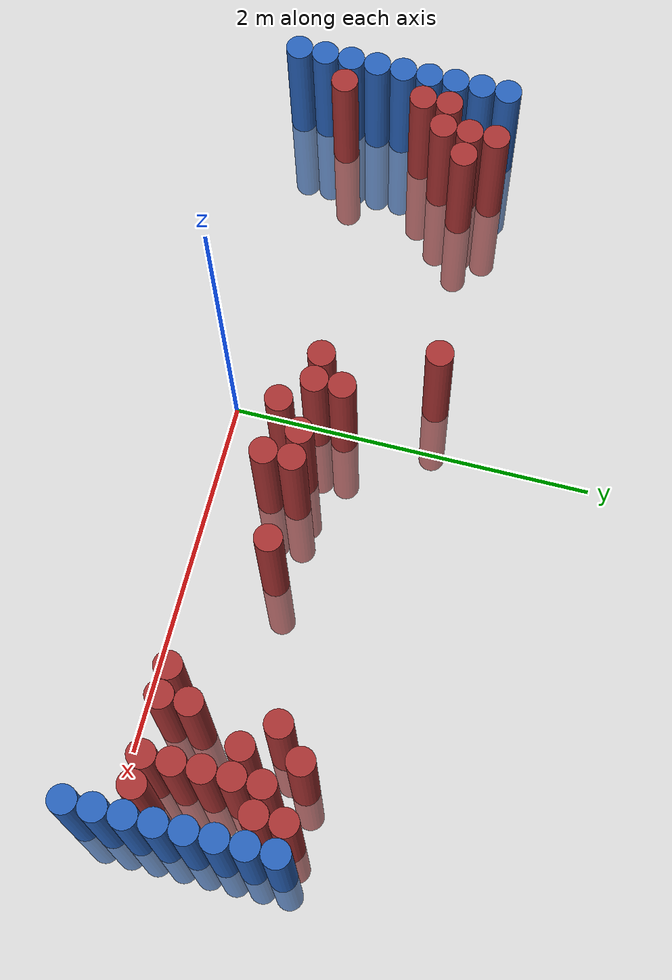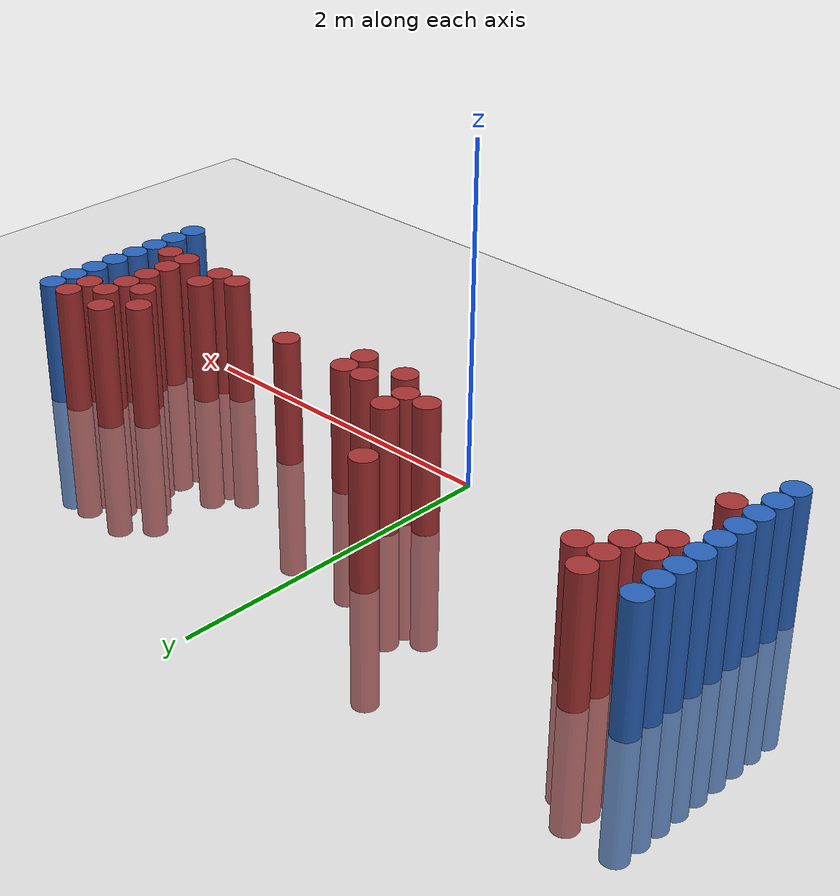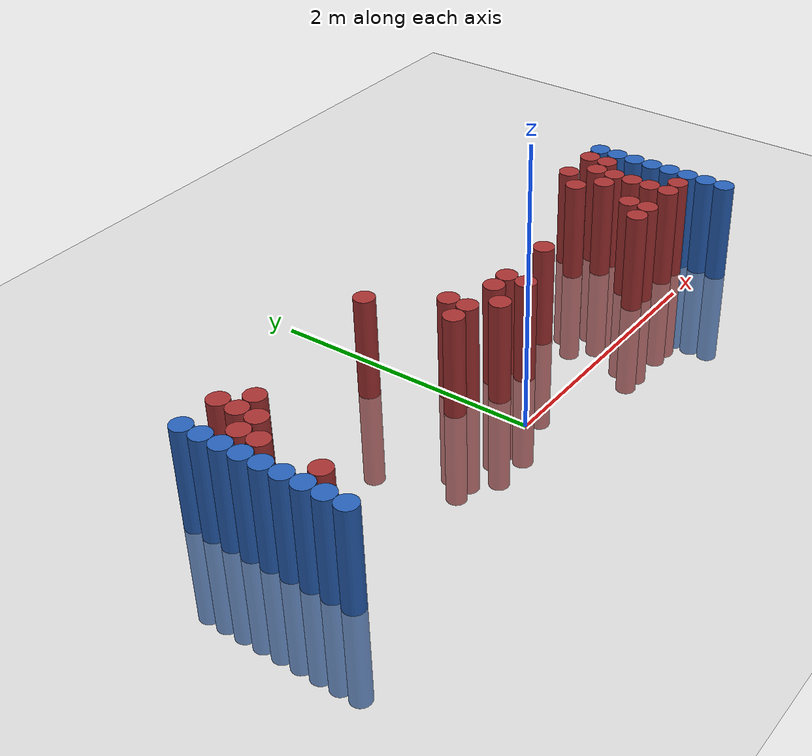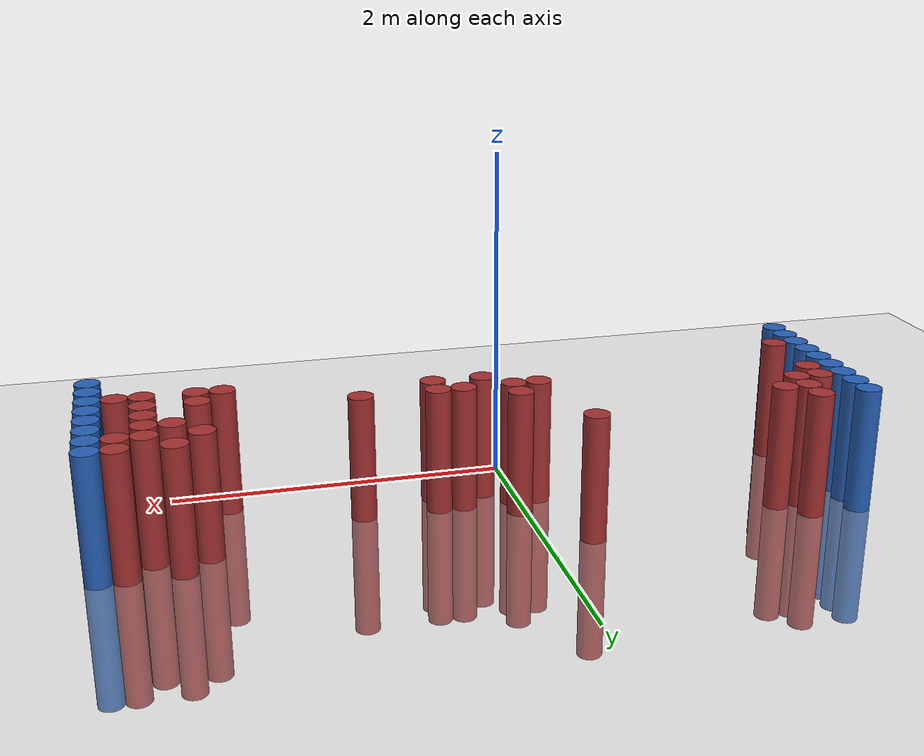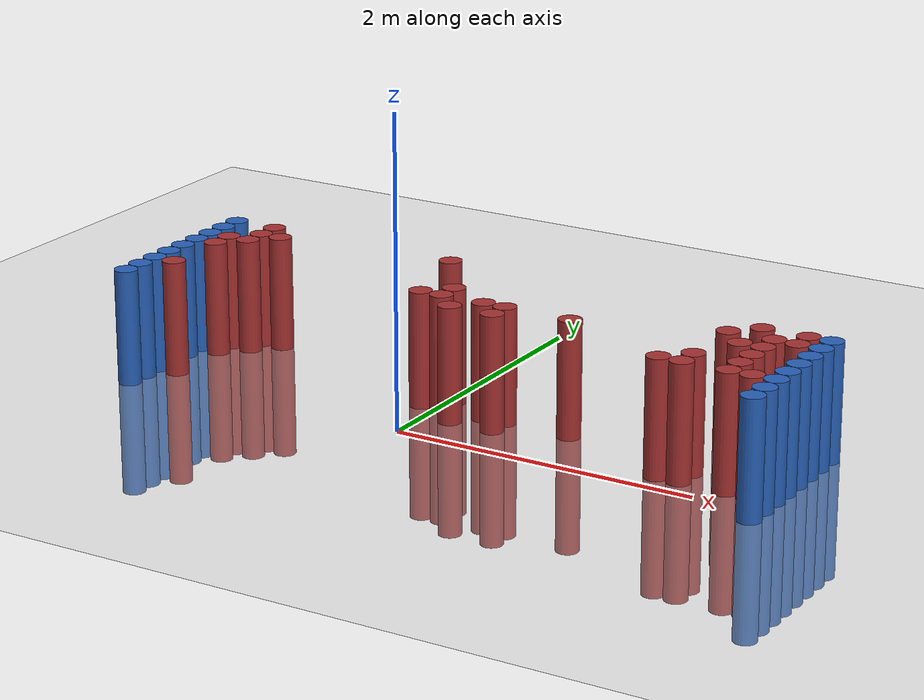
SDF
<sdf version="1.6">
 <world name="default">
  <model name="ground_plane">
   <static>1</static>
   <link name="link">
    <collision name="collision">
     <geometry><plane><normal>0 0 1</normal><size>100 100</size></plane></geometry>
     <surface><friction><ode><mu>100</mu><mu2>50</mu2></ode></friction></surface>
    </collision>
    <visual name="visual">
     <cast_shadows>0</cast_shadows>
     <geometry><plane><normal>0 0 1</normal><size>100 100</size></plane></geometry>
     <material>
      <script><uri>file://media/materials/scripts/gazebo.material</uri><name>Gazebo/Grey</name></script>
     </material>
    </visual>
   </link>
  </model>
  <model name="unit_cylinder_92">
   <static>1</static>
   <pose>2.425000 -0.125000 0.000000 0.000000 0.000000 0.000000</pose>
   <link name="link">
    <inertial>
     <mass>1</mass>
     <inertia><ixx>0.145833</ixx><ixy>0</ixy><ixz>0</ixz><iyy>0.145833</iyy><iyz>0</iyz><izz>0.125</izz></inertia>
    </inertial>
    <collision name="collision">
     <geometry><cylinder><radius>0.075000</radius><length>1.5</length></cylinder></geometry>
    </collision>
    <visual name="visual">
     <geometry><cylinder><radius>0.075000</radius><length>1.5</length></cylinder></geometry>
     <material>
      <ambient>0.152000 0.379000 0.720000 1</ambient>
      <diffuse>0.152000 0.379000 0.720000 1</diffuse>
     </material>
     <material>
      <script><name>Gazebo/Grey</name><uri>file://media/materials/scripts/gazebo.material</uri></script>
     </material>
    </visual>
   </link>
  </model>
  <model name="unit_cylinder_93">
   <static>1</static>
   <pose>-1.925000 -0.125000 0.000000 0.000000 0.000000 0.000000</pose>
   <link name="link">
    <inertial>
     <mass>1</mass>
     <inertia><ixx>0.145833</ixx><ixy>0</ixy><ixz>0</ixz><iyy>0.145833</iyy><iyz>0</iyz><izz>0.125</izz></inertia>
    </inertial>
    <collision name="collision">
     <geometry><cylinder><radius>0.075000</radius><length>1.5</length></cylinder></geometry>
    </collision>
    <visual name="visual">
     <geometry><cylinder><radius>0.075000</radius><length>1.5</length></cylinder></geometry>
     <material>
      <ambient>0.152000 0.379000 0.720000 1</ambient>
      <diffuse>0.152000 0.379000 0.720000 1</diffuse>
     </material>
     <material>
      <script><name>Gazebo/Grey</name><uri>file://media/materials/scripts/gazebo.material</uri></script>
     </material>
    </visual>
   </link>
  </model>
  <model name="unit_cylinder_94">
   <static>1</static>
   <pose>2.425000 0.025000 0.000000 0.000000 0.000000 0.000000</pose>
   <link name="link">
    <inertial>
     <mass>1</mass>
     <inertia><ixx>0.145833</ixx><ixy>0</ixy><ixz>0</ixz><iyy>0.145833</iyy><iyz>0</iyz><izz>0.125</izz></inertia>
    </inertial>
    <collision name="collision">
     <geometry><cylinder><radius>0.075000</radius><length>1.5</length></cylinder></geometry>
    </collision>
    <visual name="visual">
     <geometry><cylinder><radius>0.075000</radius><length>1.5</length></cylinder></geometry>
     <material>
      <ambient>0.152000 0.379000 0.720000 1</ambient>
      <diffuse>0.152000 0.379000 0.720000 1</diffuse>
     </material>
     <material>
      <script><name>Gazebo/Grey</name><uri>file://media/materials/scripts/gazebo.material</uri></script>
     </material>
    </visual>
   </link>
  </model>
  <model name="unit_cylinder_95">
   <static>1</static>
   <pose>-1.925000 0.025000 0.000000 0.000000 0.000000 0.000000</pose>
   <link name="link">
    <inertial>
     <mass>1</mass>
     <inertia><ixx>0.145833</ixx><ixy>0</ixy><ixz>0</ixz><iyy>0.145833</iyy><iyz>0</iyz><izz>0.125</izz></inertia>
    </inertial>
    <collision name="collision">
     <geometry><cylinder><radius>0.075000</radius><length>1.5</length></cylinder></geometry>
    </collision>
    <visual name="visual">
     <geometry><cylinder><radius>0.075000</radius><length>1.5</length></cylinder></geometry>
     <material>
      <ambient>0.152000 0.379000 0.720000 1</ambient>
      <diffuse>0.152000 0.379000 0.720000 1</diffuse>
     </material>
     <material>
      <script><name>Gazebo/Grey</name><uri>file://media/materials/scripts/gazebo.material</uri></script>
     </material>
    </visual>
   </link>
  </model>
  <model name="unit_cylinder_96">
   <static>1</static>
   <pose>-1.925000 0.175000 0.000000 0.000000 0.000000 0.000000</pose>
   <link name="link">
    <inertial>
     <mass>1</mass>
     <inertia><ixx>0.145833</ixx><ixy>0</ixy><ixz>0</ixz><iyy>0.145833</iyy><iyz>0</iyz><izz>0.125</izz></inertia>
    </inertial>
    <collision name="collision">
     <geometry><cylinder><radius>0.075000</radius><length>1.5</length></cylinder></geometry>
    </collision>
    <visual name="visual">
     <geometry><cylinder><radius>0.075000</radius><length>1.5</length></cylinder></geometry>
     <material>
      <ambient>0.152000 0.379000 0.720000 1</ambient>
      <diffuse>0.152000 0.379000 0.720000 1</diffuse>
     </material>
     <material>
      <script><name>Gazebo/Grey</name><uri>file://media/materials/scripts/gazebo.material</uri></script>
     </material>
    </visual>
   </link>
  </model>
  <model name="unit_cylinder_97">
   <static>1</static>
   <pose>-1.925000 0.325000 0.000000 0.000000 0.000000 0.000000</pose>
   <link name="link">
    <inertial>
     <mass>1</mass>
     <inertia><ixx>0.145833</ixx><ixy>0</ixy><ixz>0</ixz><iyy>0.145833</iyy><iyz>0</iyz><izz>0.125</izz></inertia>
    </inertial>
    <collision name="collision">
     <geometry><cylinder><radius>0.075000</radius><length>1.5</length></cylinder></geometry>
    </collision>
    <visual name="visual">
     <geometry><cylinder><radius>0.075000</radius><length>1.5</length></cylinder></geometry>
     <material>
      <ambient>0.152000 0.379000 0.720000 1</ambient>
      <diffuse>0.152000 0.379000 0.720000 1</diffuse>
     </material>
     <material>
      <script><name>Gazebo/Grey</name><uri>file://media/materials/scripts/gazebo.material</uri></script>
     </material>
    </visual>
   </link>
  </model>
  <model name="unit_cylinder_98">
   <static>1</static>
   <pose>-1.925000 0.475000 0.000000 0.000000 0.000000 0.000000</pose>
   <link name="link">
    <inertial>
     <mass>1</mass>
     <inertia><ixx>0.145833</ixx><ixy>0</ixy><ixz>0</ixz><iyy>0.145833</iyy><iyz>0</iyz><izz>0.125</izz></inertia>
    </inertial>
    <collision name="collision">
     <geometry><cylinder><radius>0.075000</radius><length>1.5</length></cylinder></geometry>
    </collision>
    <visual name="visual">
     <geometry><cylinder><radius>0.075000</radius><length>1.5</length></cylinder></geometry>
     <material>
      <ambient>0.152000 0.379000 0.720000 1</ambient>
      <diffuse>0.152000 0.379000 0.720000 1</diffuse>
     </material>
     <material>
      <script><name>Gazebo/Grey</name><uri>file://media/materials/scripts/gazebo.material</uri></script>
     </material>
    </visual>
   </link>
  </model>
  <model name="unit_cylinder_99">
   <static>1</static>
   <pose>-1.925000 0.625000 0.000000 0.000000 0.000000 0.000000</pose>
   <link name="link">
    <inertial>
     <mass>1</mass>
     <inertia><ixx>0.145833</ixx><ixy>0</ixy><ixz>0</ixz><iyy>0.145833</iyy><iyz>0</iyz><izz>0.125</izz></inertia>
    </inertial>
    <collision name="collision">
     <geometry><cylinder><radius>0.075000</radius><length>1.5</length></cylinder></geometry>
    </collision>
    <visual name="visual">
     <geometry><cylinder><radius>0.075000</radius><length>1.5</length></cylinder></geometry>
     <material>
      <ambient>0.152000 0.379000 0.720000 1</ambient>
      <diffuse>0.152000 0.379000 0.720000 1</diffuse>
     </material>
     <material>
      <script><name>Gazebo/Grey</name><uri>file://media/materials/scripts/gazebo.material</uri></script>
     </material>
    </visual>
   </link>
  </model>
  <model name="unit_cylinder_100">
   <static>1</static>
   <pose>-1.925000 0.775000 0.000000 0.000000 0.000000 0.000000</pose>
   <link name="link">
    <inertial>
     <mass>1</mass>
     <inertia><ixx>0.145833</ixx><ixy>0</ixy><ixz>0</ixz><iyy>0.145833</iyy><iyz>0</iyz><izz>0.125</izz></inertia>
    </inertial>
    <collision name="collision">
     <geometry><cylinder><radius>0.075000</radius><length>1.5</length></cylinder></geometry>
    </collision>
    <visual name="visual">
     <geometry><cylinder><radius>0.075000</radius><length>1.5</length></cylinder></geometry>
     <material>
      <ambient>0.152000 0.379000 0.720000 1</ambient>
      <diffuse>0.152000 0.379000 0.720000 1</diffuse>
     </material>
     <material>
      <script><name>Gazebo/Grey</name><uri>file://media/materials/scripts/gazebo.material</uri></script>
     </material>
    </visual>
   </link>
  </model>
  <model name="unit_cylinder_101">
   <static>1</static>
   <pose>-1.925000 0.925000 0.000000 0.000000 0.000000 0.000000</pose>
   <link name="link">
    <inertial>
     <mass>1</mass>
     <inertia><ixx>0.145833</ixx><ixy>0</ixy><ixz>0</ixz><iyy>0.145833</iyy><iyz>0</iyz><izz>0.125</izz></inertia>
    </inertial>
    <collision name="collision">
     <geometry><cylinder><radius>0.075000</radius><length>1.5</length></cylinder></geometry>
    </collision>
    <visual name="visual">
     <geometry><cylinder><radius>0.075000</radius><length>1.5</length></cylinder></geometry>
     <material>
      <ambient>0.152000 0.379000 0.720000 1</ambient>
      <diffuse>0.152000 0.379000 0.720000 1</diffuse>
     </material>
     <material>
      <script><name>Gazebo/Grey</name><uri>file://media/materials/scripts/gazebo.material</uri></script>
     </material>
    </visual>
   </link>
  </model>
  <model name="unit_cylinder_102">
   <static>1</static>
   <pose>-1.925000 1.075000 0.000000 0.000000 0.000000 0.000000</pose>
   <link name="link">
    <inertial>
     <mass>1</mass>
     <inertia><ixx>0.145833</ixx><ixy>0</ixy><ixz>0</ixz><iyy>0.145833</iyy><iyz>0</iyz><izz>0.125</izz></inertia>
    </inertial>
    <collision name="collision">
     <geometry><cylinder><radius>0.075000</radius><length>1.5</length></cylinder></geometry>
    </collision>
    <visual name="visual">
     <geometry><cylinder><radius>0.075000</radius><length>1.5</length></cylinder></geometry>
     <material>
      <ambient>0.152000 0.379000 0.720000 1</ambient>
      <diffuse>0.152000 0.379000 0.720000 1</diffuse>
     </material>
     <material>
      <script><name>Gazebo/Grey</name><uri>file://media/materials/scripts/gazebo.material</uri></script>
     </material>
    </visual>
   </link>
  </model>
  <model name="unit_cylinder_126">
   <static>1</static>
   <pose>-1.775000 0.175000 0.000000 0.000000 0.000000 0.000000</pose>
   <link name="link">
    <inertial>
     <mass>1</mass>
     <inertia><ixx>0.145833</ixx><ixy>0</ixy><ixz>0</ixz><iyy>0.145833</iyy><iyz>0</iyz><izz>0.125</izz></inertia>
    </inertial>
    <collision name="collision">
     <geometry><cylinder><radius>0.075000</radius><length>1.5</length></cylinder></geometry>
    </collision>
    <visual name="visual">
     <geometry><cylinder><radius>0.075000</radius><length>1.5</length></cylinder></geometry>
     <material>
      <ambient>0.648000 0.192000 0.192000 1</ambient>
      <diffuse>0.648000 0.192000 0.192000 1</diffuse>
     </material>
     <material>
      <script><name>Gazebo/Grey</name><uri>file://media/materials/scripts/gazebo.material</uri></script>
     </material>
    </visual>
   </link>
  </model>
  <model name="unit_cylinder_127">
   <static>1</static>
   <pose>-1.775000 0.625000 0.000000 0.000000 0.000000 0.000000</pose>
   <link name="link">
    <inertial>
     <mass>1</mass>
     <inertia><ixx>0.145833</ixx><ixy>0</ixy><ixz>0</ixz><iyy>0.145833</iyy><iyz>0</iyz><izz>0.125</izz></inertia>
    </inertial>
    <collision name="collision">
     <geometry><cylinder><radius>0.075000</radius><length>1.5</length></cylinder></geometry>
    </collision>
    <visual name="visual">
     <geometry><cylinder><radius>0.075000</radius><length>1.5</length></cylinder></geometry>
     <material>
      <ambient>0.648000 0.192000 0.192000 1</ambient>
      <diffuse>0.648000 0.192000 0.192000 1</diffuse>
     </material>
     <material>
      <script><name>Gazebo/Grey</name><uri>file://media/materials/scripts/gazebo.material</uri></script>
     </material>
    </visual>
   </link>
  </model>
  <model name="unit_cylinder_128">
   <static>1</static>
   <pose>-1.775000 0.775000 0.000000 0.000000 0.000000 0.000000</pose>
   <link name="link">
    <inertial>
     <mass>1</mass>
     <inertia><ixx>0.145833</ixx><ixy>0</ixy><ixz>0</ixz><iyy>0.145833</iyy><iyz>0</iyz><izz>0.125</izz></inertia>
    </inertial>
    <collision name="collision">
     <geometry><cylinder><radius>0.075000</radius><length>1.5</length></cylinder></geometry>
    </collision>
    <visual name="visual">
     <geometry><cylinder><radius>0.075000</radius><length>1.5</length></cylinder></geometry>
     <material>
      <ambient>0.648000 0.192000 0.192000 1</ambient>
      <diffuse>0.648000 0.192000 0.192000 1</diffuse>
     </material>
     <material>
      <script><name>Gazebo/Grey</name><uri>file://media/materials/scripts/gazebo.material</uri></script>
     </material>
    </visual>
   </link>
  </model>
  <model name="unit_cylinder_139">
   <static>1</static>
   <pose>-1.625000 0.775000 0.000000 0.000000 0.000000 0.000000</pose>
   <link name="link">
    <inertial>
     <mass>1</mass>
     <inertia><ixx>0.145833</ixx><ixy>0</ixy><ixz>0</ixz><iyy>0.145833</iyy><iyz>0</iyz><izz>0.125</izz></inertia>
    </inertial>
    <collision name="collision">
     <geometry><cylinder><radius>0.075000</radius><length>1.5</length></cylinder></geometry>
    </collision>
    <visual name="visual">
     <geometry><cylinder><radius>0.075000</radius><length>1.5</length></cylinder></geometry>
     <material>
      <ambient>0.648000 0.192000 0.192000 1</ambient>
      <diffuse>0.648000 0.192000 0.192000 1</diffuse>
     </material>
     <material>
      <script><name>Gazebo/Grey</name><uri>file://media/materials/scripts/gazebo.material</uri></script>
     </material>
    </visual>
   </link>
  </model>
  <model name="unit_cylinder_140">
   <static>1</static>
   <pose>-1.625000 0.925000 0.000000 0.000000 0.000000 0.000000</pose>
   <link name="link">
    <inertial>
     <mass>1</mass>
     <inertia><ixx>0.145833</ixx><ixy>0</ixy><ixz>0</ixz><iyy>0.145833</iyy><iyz>0</iyz><izz>0.125</izz></inertia>
    </inertial>
    <collision name="collision">
     <geometry><cylinder><radius>0.075000</radius><length>1.5</length></cylinder></geometry>
    </collision>
    <visual name="visual">
     <geometry><cylinder><radius>0.075000</radius><length>1.5</length></cylinder></geometry>
     <material>
      <ambient>0.648000 0.192000 0.192000 1</ambient>
      <diffuse>0.648000 0.192000 0.192000 1</diffuse>
     </material>
     <material>
      <script><name>Gazebo/Grey</name><uri>file://media/materials/scripts/gazebo.material</uri></script>
     </material>
    </visual>
   </link>
  </model>
  <model name="unit_cylinder_141">
   <static>1</static>
   <pose>-1.625000 1.075000 0.000000 0.000000 0.000000 0.000000</pose>
   <link name="link">
    <inertial>
     <mass>1</mass>
     <inertia><ixx>0.145833</ixx><ixy>0</ixy><ixz>0</ixz><iyy>0.145833</iyy><iyz>0</iyz><izz>0.125</izz></inertia>
    </inertial>
    <collision name="collision">
     <geometry><cylinder><radius>0.075000</radius><length>1.5</length></cylinder></geometry>
    </collision>
    <visual name="visual">
     <geometry><cylinder><radius>0.075000</radius><length>1.5</length></cylinder></geometry>
     <material>
      <ambient>0.648000 0.192000 0.192000 1</ambient>
      <diffuse>0.648000 0.192000 0.192000 1</diffuse>
     </material>
     <material>
      <script><name>Gazebo/Grey</name><uri>file://media/materials/scripts/gazebo.material</uri></script>
     </material>
    </visual>
   </link>
  </model>
  <model name="unit_cylinder_146">
   <static>1</static>
   <pose>-1.475000 0.925000 0.000000 0.000000 0.000000 0.000000</pose>
   <link name="link">
    <inertial>
     <mass>1</mass>
     <inertia><ixx>0.145833</ixx><ixy>0</ixy><ixz>0</ixz><iyy>0.145833</iyy><iyz>0</iyz><izz>0.125</izz></inertia>
    </inertial>
    <collision name="collision">
     <geometry><cylinder><radius>0.075000</radius><length>1.5</length></cylinder></geometry>
    </collision>
    <visual name="visual">
     <geometry><cylinder><radius>0.075000</radius><length>1.5</length></cylinder></geometry>
     <material>
      <ambient>0.648000 0.192000 0.192000 1</ambient>
      <diffuse>0.648000 0.192000 0.192000 1</diffuse>
     </material>
     <material>
      <script><name>Gazebo/Grey</name><uri>file://media/materials/scripts/gazebo.material</uri></script>
     </material>
    </visual>
   </link>
  </model>
  <model name="unit_cylinder_149">
   <static>1</static>
   <pose>-0.275000 1.075000 0.000000 0.000000 0.000000 0.000000</pose>
   <link name="link">
    <inertial>
     <mass>1</mass>
     <inertia><ixx>0.145833</ixx><ixy>0</ixy><ixz>0</ixz><iyy>0.145833</iyy><iyz>0</iyz><izz>0.125</izz></inertia>
    </inertial>
    <collision name="collision">
     <geometry><cylinder><radius>0.075000</radius><length>1.5</length></cylinder></geometry>
    </collision>
    <visual name="visual">
     <geometry><cylinder><radius>0.075000</radius><length>1.5</length></cylinder></geometry>
     <material>
      <ambient>0.648000 0.192000 0.192000 1</ambient>
      <diffuse>0.648000 0.192000 0.192000 1</diffuse>
     </material>
     <material>
      <script><name>Gazebo/Grey</name><uri>file://media/materials/scripts/gazebo.material</uri></script>
     </material>
    </visual>
   </link>
  </model>
  <model name="unit_cylinder_153">
   <static>1</static>
   <pose>-0.125000 0.475000 0.000000 0.000000 0.000000 0.000000</pose>
   <link name="link">
    <inertial>
     <mass>1</mass>
     <inertia><ixx>0.145833</ixx><ixy>0</ixy><ixz>0</ixz><iyy>0.145833</iyy><iyz>0</iyz><izz>0.125</izz></inertia>
    </inertial>
    <collision name="collision">
     <geometry><cylinder><radius>0.075000</radius><length>1.5</length></cylinder></geometry>
    </collision>
    <visual name="visual">
     <geometry><cylinder><radius>0.075000</radius><length>1.5</length></cylinder></geometry>
     <material>
      <ambient>0.648000 0.192000 0.192000 1</ambient>
      <diffuse>0.648000 0.192000 0.192000 1</diffuse>
     </material>
     <material>
      <script><name>Gazebo/Grey</name><uri>file://media/materials/scripts/gazebo.material</uri></script>
     </material>
    </visual>
   </link>
  </model>
  <model name="unit_cylinder_156">
   <static>1</static>
   <pose>0.025000 0.475000 0.000000 0.000000 0.000000 0.000000</pose>
   <link name="link">
    <inertial>
     <mass>1</mass>
     <inertia><ixx>0.145833</ixx><ixy>0</ixy><ixz>0</ixz><iyy>0.145833</iyy><iyz>0</iyz><izz>0.125</izz></inertia>
    </inertial>
    <collision name="collision">
     <geometry><cylinder><radius>0.075000</radius><length>1.5</length></cylinder></geometry>
    </collision>
    <visual name="visual">
     <geometry><cylinder><radius>0.075000</radius><length>1.5</length></cylinder></geometry>
     <material>
      <ambient>0.648000 0.192000 0.192000 1</ambient>
      <diffuse>0.648000 0.192000 0.192000 1</diffuse>
     </material>
     <material>
      <script><name>Gazebo/Grey</name><uri>file://media/materials/scripts/gazebo.material</uri></script>
     </material>
    </visual>
   </link>
  </model>
  <model name="unit_cylinder_157">
   <static>1</static>
   <pose>0.025000 0.625000 0.000000 0.000000 0.000000 0.000000</pose>
   <link name="link">
    <inertial>
     <mass>1</mass>
     <inertia><ixx>0.145833</ixx><ixy>0</ixy><ixz>0</ixz><iyy>0.145833</iyy><iyz>0</iyz><izz>0.125</izz></inertia>
    </inertial>
    <collision name="collision">
     <geometry><cylinder><radius>0.075000</radius><length>1.5</length></cylinder></geometry>
    </collision>
    <visual name="visual">
     <geometry><cylinder><radius>0.075000</radius><length>1.5</length></cylinder></geometry>
     <material>
      <ambient>0.648000 0.192000 0.192000 1</ambient>
      <diffuse>0.648000 0.192000 0.192000 1</diffuse>
     </material>
     <material>
      <script><name>Gazebo/Grey</name><uri>file://media/materials/scripts/gazebo.material</uri></script>
     </material>
    </visual>
   </link>
  </model>
  <model name="unit_cylinder_159">
   <static>1</static>
   <pose>0.175000 0.325000 0.000000 0.000000 0.000000 0.000000</pose>
   <link name="link">
    <inertial>
     <mass>1</mass>
     <inertia><ixx>0.145833</ixx><ixy>0</ixy><ixz>0</ixz><iyy>0.145833</iyy><iyz>0</iyz><izz>0.125</izz></inertia>
    </inertial>
    <collision name="collision">
     <geometry><cylinder><radius>0.075000</radius><length>1.5</length></cylinder></geometry>
    </collision>
    <visual name="visual">
     <geometry><cylinder><radius>0.075000</radius><length>1.5</length></cylinder></geometry>
     <material>
      <ambient>0.648000 0.192000 0.192000 1</ambient>
      <diffuse>0.648000 0.192000 0.192000 1</diffuse>
     </material>
     <material>
      <script><name>Gazebo/Grey</name><uri>file://media/materials/scripts/gazebo.material</uri></script>
     </material>
    </visual>
   </link>
  </model>
  <model name="unit_cylinder_162">
   <static>1</static>
   <pose>0.325000 0.475000 0.000000 0.000000 0.000000 0.000000</pose>
   <link name="link">
    <inertial>
     <mass>1</mass>
     <inertia><ixx>0.145833</ixx><ixy>0</ixy><ixz>0</ixz><iyy>0.145833</iyy><iyz>0</iyz><izz>0.125</izz></inertia>
    </inertial>
    <collision name="collision">
     <geometry><cylinder><radius>0.075000</radius><length>1.5</length></cylinder></geometry>
    </collision>
    <visual name="visual">
     <geometry><cylinder><radius>0.075000</radius><length>1.5</length></cylinder></geometry>
     <material>
      <ambient>0.648000 0.192000 0.192000 1</ambient>
      <diffuse>0.648000 0.192000 0.192000 1</diffuse>
     </material>
     <material>
      <script><name>Gazebo/Grey</name><uri>file://media/materials/scripts/gazebo.material</uri></script>
     </material>
    </visual>
   </link>
  </model>
  <model name="unit_cylinder_165">
   <static>1</static>
   <pose>0.475000 0.325000 0.000000 0.000000 0.000000 0.000000</pose>
   <link name="link">
    <inertial>
     <mass>1</mass>
     <inertia><ixx>0.145833</ixx><ixy>0</ixy><ixz>0</ixz><iyy>0.145833</iyy><iyz>0</iyz><izz>0.125</izz></inertia>
    </inertial>
    <collision name="collision">
     <geometry><cylinder><radius>0.075000</radius><length>1.5</length></cylinder></geometry>
    </collision>
    <visual name="visual">
     <geometry><cylinder><radius>0.075000</radius><length>1.5</length></cylinder></geometry>
     <material>
      <ambient>0.648000 0.192000 0.192000 1</ambient>
      <diffuse>0.648000 0.192000 0.192000 1</diffuse>
     </material>
     <material>
      <script><name>Gazebo/Grey</name><uri>file://media/materials/scripts/gazebo.material</uri></script>
     </material>
    </visual>
   </link>
  </model>
  <model name="unit_cylinder_166">
   <static>1</static>
   <pose>0.475000 0.475000 0.000000 0.000000 0.000000 0.000000</pose>
   <link name="link">
    <inertial>
     <mass>1</mass>
     <inertia><ixx>0.145833</ixx><ixy>0</ixy><ixz>0</ixz><iyy>0.145833</iyy><iyz>0</iyz><izz>0.125</izz></inertia>
    </inertial>
    <collision name="collision">
     <geometry><cylinder><radius>0.075000</radius><length>1.5</length></cylinder></geometry>
    </collision>
    <visual name="visual">
     <geometry><cylinder><radius>0.075000</radius><length>1.5</length></cylinder></geometry>
     <material>
      <ambient>0.648000 0.192000 0.192000 1</ambient>
      <diffuse>0.648000 0.192000 0.192000 1</diffuse>
     </material>
     <material>
      <script><name>Gazebo/Grey</name><uri>file://media/materials/scripts/gazebo.material</uri></script>
     </material>
    </visual>
   </link>
  </model>
  <model name="unit_cylinder_179">
   <static>1</static>
   <pose>0.925000 0.475000 0.000000 0.000000 0.000000 0.000000</pose>
   <link name="link">
    <inertial>
     <mass>1</mass>
     <inertia><ixx>0.145833</ixx><ixy>0</ixy><ixz>0</ixz><iyy>0.145833</iyy><iyz>0</iyz><izz>0.125</izz></inertia>
    </inertial>
    <collision name="collision">
     <geometry><cylinder><radius>0.075000</radius><length>1.5</length></cylinder></geometry>
    </collision>
    <visual name="visual">
     <geometry><cylinder><radius>0.075000</radius><length>1.5</length></cylinder></geometry>
     <material>
      <ambient>0.648000 0.192000 0.192000 1</ambient>
      <diffuse>0.648000 0.192000 0.192000 1</diffuse>
     </material>
     <material>
      <script><name>Gazebo/Grey</name><uri>file://media/materials/scripts/gazebo.material</uri></script>
     </material>
    </visual>
   </link>
  </model>
  <model name="unit_cylinder_194">
   <static>1</static>
   <pose>1.675000 0.175000 0.000000 0.000000 0.000000 0.000000</pose>
   <link name="link">
    <inertial>
     <mass>1</mass>
     <inertia><ixx>0.145833</ixx><ixy>0</ixy><ixz>0</ixz><iyy>0.145833</iyy><iyz>0</iyz><izz>0.125</izz></inertia>
    </inertial>
    <collision name="collision">
     <geometry><cylinder><radius>0.075000</radius><length>1.5</length></cylinder></geometry>
    </collision>
    <visual name="visual">
     <geometry><cylinder><radius>0.075000</radius><length>1.5</length></cylinder></geometry>
     <material>
      <ambient>0.648000 0.192000 0.192000 1</ambient>
      <diffuse>0.648000 0.192000 0.192000 1</diffuse>
     </material>
     <material>
      <script><name>Gazebo/Grey</name><uri>file://media/materials/scripts/gazebo.material</uri></script>
     </material>
    </visual>
   </link>
  </model>
  <model name="unit_cylinder_202">
   <static>1</static>
   <pose>1.825000 0.175000 0.000000 0.000000 0.000000 0.000000</pose>
   <link name="link">
    <inertial>
     <mass>1</mass>
     <inertia><ixx>0.145833</ixx><ixy>0</ixy><ixz>0</ixz><iyy>0.145833</iyy><iyz>0</iyz><izz>0.125</izz></inertia>
    </inertial>
    <collision name="collision">
     <geometry><cylinder><radius>0.075000</radius><length>1.5</length></cylinder></geometry>
    </collision>
    <visual name="visual">
     <geometry><cylinder><radius>0.075000</radius><length>1.5</length></cylinder></geometry>
     <material>
      <ambient>0.648000 0.192000 0.192000 1</ambient>
      <diffuse>0.648000 0.192000 0.192000 1</diffuse>
     </material>
     <material>
      <script><name>Gazebo/Grey</name><uri>file://media/materials/scripts/gazebo.material</uri></script>
     </material>
    </visual>
   </link>
  </model>
  <model name="unit_cylinder_203">
   <static>1</static>
   <pose>1.825000 0.325000 0.000000 0.000000 0.000000 0.000000</pose>
   <link name="link">
    <inertial>
     <mass>1</mass>
     <inertia><ixx>0.145833</ixx><ixy>0</ixy><ixz>0</ixz><iyy>0.145833</iyy><iyz>0</iyz><izz>0.125</izz></inertia>
    </inertial>
    <collision name="collision">
     <geometry><cylinder><radius>0.075000</radius><length>1.5</length></cylinder></geometry>
    </collision>
    <visual name="visual">
     <geometry><cylinder><radius>0.075000</radius><length>1.5</length></cylinder></geometry>
     <material>
      <ambient>0.648000 0.192000 0.192000 1</ambient>
      <diffuse>0.648000 0.192000 0.192000 1</diffuse>
     </material>
     <material>
      <script><name>Gazebo/Grey</name><uri>file://media/materials/scripts/gazebo.material</uri></script>
     </material>
    </visual>
   </link>
  </model>
  <model name="unit_cylinder_204">
   <static>1</static>
   <pose>1.825000 0.775000 0.000000 0.000000 0.000000 0.000000</pose>
   <link name="link">
    <inertial>
     <mass>1</mass>
     <inertia><ixx>0.145833</ixx><ixy>0</ixy><ixz>0</ixz><iyy>0.145833</iyy><iyz>0</iyz><izz>0.125</izz></inertia>
    </inertial>
    <collision name="collision">
     <geometry><cylinder><radius>0.075000</radius><length>1.5</length></cylinder></geometry>
    </collision>
    <visual name="visual">
     <geometry><cylinder><radius>0.075000</radius><length>1.5</length></cylinder></geometry>
     <material>
      <ambient>0.648000 0.192000 0.192000 1</ambient>
      <diffuse>0.648000 0.192000 0.192000 1</diffuse>
     </material>
     <material>
      <script><name>Gazebo/Grey</name><uri>file://media/materials/scripts/gazebo.material</uri></script>
     </material>
    </visual>
   </link>
  </model>
  <model name="unit_cylinder_212">
   <static>1</static>
   <pose>1.975000 0.625000 0.000000 0.000000 0.000000 0.000000</pose>
   <link name="link">
    <inertial>
     <mass>1</mass>
     <inertia><ixx>0.145833</ixx><ixy>0</ixy><ixz>0</ixz><iyy>0.145833</iyy><iyz>0</iyz><izz>0.125</izz></inertia>
    </inertial>
    <collision name="collision">
     <geometry><cylinder><radius>0.075000</radius><length>1.5</length></cylinder></geometry>
    </collision>
    <visual name="visual">
     <geometry><cylinder><radius>0.075000</radius><length>1.5</length></cylinder></geometry>
     <material>
      <ambient>0.648000 0.192000 0.192000 1</ambient>
      <diffuse>0.648000 0.192000 0.192000 1</diffuse>
     </material>
     <material>
      <script><name>Gazebo/Grey</name><uri>file://media/materials/scripts/gazebo.material</uri></script>
     </material>
    </visual>
   </link>
  </model>
  <model name="unit_cylinder_213">
   <static>1</static>
   <pose>1.975000 0.925000 0.000000 0.000000 0.000000 0.000000</pose>
   <link name="link">
    <inertial>
     <mass>1</mass>
     <inertia><ixx>0.145833</ixx><ixy>0</ixy><ixz>0</ixz><iyy>0.145833</iyy><iyz>0</iyz><izz>0.125</izz></inertia>
    </inertial>
    <collision name="collision">
     <geometry><cylinder><radius>0.075000</radius><length>1.5</length></cylinder></geometry>
    </collision>
    <visual name="visual">
     <geometry><cylinder><radius>0.075000</radius><length>1.5</length></cylinder></geometry>
     <material>
      <ambient>0.648000 0.192000 0.192000 1</ambient>
      <diffuse>0.648000 0.192000 0.192000 1</diffuse>
     </material>
     <material>
      <script><name>Gazebo/Grey</name><uri>file://media/materials/scripts/gazebo.material</uri></script>
     </material>
    </visual>
   </link>
  </model>
  <model name="unit_cylinder_218">
   <static>1</static>
   <pose>2.125000 0.175000 0.000000 0.000000 0.000000 0.000000</pose>
   <link name="link">
    <inertial>
     <mass>1</mass>
     <inertia><ixx>0.145833</ixx><ixy>0</ixy><ixz>0</ixz><iyy>0.145833</iyy><iyz>0</iyz><izz>0.125</izz></inertia>
    </inertial>
    <collision name="collision">
     <geometry><cylinder><radius>0.075000</radius><length>1.5</length></cylinder></geometry>
    </collision>
    <visual name="visual">
     <geometry><cylinder><radius>0.075000</radius><length>1.5</length></cylinder></geometry>
     <material>
      <ambient>0.648000 0.192000 0.192000 1</ambient>
      <diffuse>0.648000 0.192000 0.192000 1</diffuse>
     </material>
     <material>
      <script><name>Gazebo/Grey</name><uri>file://media/materials/scripts/gazebo.material</uri></script>
     </material>
    </visual>
   </link>
  </model>
  <model name="unit_cylinder_219">
   <static>1</static>
   <pose>2.125000 0.325000 0.000000 0.000000 0.000000 0.000000</pose>
   <link name="link">
    <inertial>
     <mass>1</mass>
     <inertia><ixx>0.145833</ixx><ixy>0</ixy><ixz>0</ixz><iyy>0.145833</iyy><iyz>0</iyz><izz>0.125</izz></inertia>
    </inertial>
    <collision name="collision">
     <geometry><cylinder><radius>0.075000</radius><length>1.5</length></cylinder></geometry>
    </collision>
    <visual name="visual">
     <geometry><cylinder><radius>0.075000</radius><length>1.5</length></cylinder></geometry>
     <material>
      <ambient>0.648000 0.192000 0.192000 1</ambient>
      <diffuse>0.648000 0.192000 0.192000 1</diffuse>
     </material>
     <material>
      <script><name>Gazebo/Grey</name><uri>file://media/materials/scripts/gazebo.material</uri></script>
     </material>
    </visual>
   </link>
  </model>
  <model name="unit_cylinder_220">
   <static>1</static>
   <pose>2.125000 0.475000 0.000000 0.000000 0.000000 0.000000</pose>
   <link name="link">
    <inertial>
     <mass>1</mass>
     <inertia><ixx>0.145833</ixx><ixy>0</ixy><ixz>0</ixz><iyy>0.145833</iyy><iyz>0</iyz><izz>0.125</izz></inertia>
    </inertial>
    <collision name="collision">
     <geometry><cylinder><radius>0.075000</radius><length>1.5</length></cylinder></geometry>
    </collision>
    <visual name="visual">
     <geometry><cylinder><radius>0.075000</radius><length>1.5</length></cylinder></geometry>
     <material>
      <ambient>0.648000 0.192000 0.192000 1</ambient>
      <diffuse>0.648000 0.192000 0.192000 1</diffuse>
     </material>
     <material>
      <script><name>Gazebo/Grey</name><uri>file://media/materials/scripts/gazebo.material</uri></script>
     </material>
    </visual>
   </link>
  </model>
  <model name="unit_cylinder_221">
   <static>1</static>
   <pose>2.125000 0.625000 0.000000 0.000000 0.000000 0.000000</pose>
   <link name="link">
    <inertial>
     <mass>1</mass>
     <inertia><ixx>0.145833</ixx><ixy>0</ixy><ixz>0</ixz><iyy>0.145833</iyy><iyz>0</iyz><izz>0.125</izz></inertia>
    </inertial>
    <collision name="collision">
     <geometry><cylinder><radius>0.075000</radius><length>1.5</length></cylinder></geometry>
    </collision>
    <visual name="visual">
     <geometry><cylinder><radius>0.075000</radius><length>1.5</length></cylinder></geometry>
     <material>
      <ambient>0.648000 0.192000 0.192000 1</ambient>
      <diffuse>0.648000 0.192000 0.192000 1</diffuse>
     </material>
     <material>
      <script><name>Gazebo/Grey</name><uri>file://media/materials/scripts/gazebo.material</uri></script>
     </material>
    </visual>
   </link>
  </model>
  <model name="unit_cylinder_222">
   <static>1</static>
   <pose>2.125000 0.775000 0.000000 0.000000 0.000000 0.000000</pose>
   <link name="link">
    <inertial>
     <mass>1</mass>
     <inertia><ixx>0.145833</ixx><ixy>0</ixy><ixz>0</ixz><iyy>0.145833</iyy><iyz>0</iyz><izz>0.125</izz></inertia>
    </inertial>
    <collision name="collision">
     <geometry><cylinder><radius>0.075000</radius><length>1.5</length></cylinder></geometry>
    </collision>
    <visual name="visual">
     <geometry><cylinder><radius>0.075000</radius><length>1.5</length></cylinder></geometry>
     <material>
      <ambient>0.648000 0.192000 0.192000 1</ambient>
      <diffuse>0.648000 0.192000 0.192000 1</diffuse>
     </material>
     <material>
      <script><name>Gazebo/Grey</name><uri>file://media/materials/scripts/gazebo.material</uri></script>
     </material>
    </visual>
   </link>
  </model>
  <model name="unit_cylinder_227">
   <static>1</static>
   <pose>2.275000 0.175000 0.000000 0.000000 0.000000 0.000000</pose>
   <link name="link">
    <inertial>
     <mass>1</mass>
     <inertia><ixx>0.145833</ixx><ixy>0</ixy><ixz>0</ixz><iyy>0.145833</iyy><iyz>0</iyz><izz>0.125</izz></inertia>
    </inertial>
    <collision name="collision">
     <geometry><cylinder><radius>0.075000</radius><length>1.5</length></cylinder></geometry>
    </collision>
    <visual name="visual">
     <geometry><cylinder><radius>0.075000</radius><length>1.5</length></cylinder></geometry>
     <material>
      <ambient>0.648000 0.192000 0.192000 1</ambient>
      <diffuse>0.648000 0.192000 0.192000 1</diffuse>
     </material>
     <material>
      <script><name>Gazebo/Grey</name><uri>file://media/materials/scripts/gazebo.material</uri></script>
     </material>
    </visual>
   </link>
  </model>
  <model name="unit_cylinder_228">
   <static>1</static>
   <pose>2.275000 0.775000 0.000000 0.000000 0.000000 0.000000</pose>
   <link name="link">
    <inertial>
     <mass>1</mass>
     <inertia><ixx>0.145833</ixx><ixy>0</ixy><ixz>0</ixz><iyy>0.145833</iyy><iyz>0</iyz><izz>0.125</izz></inertia>
    </inertial>
    <collision name="collision">
     <geometry><cylinder><radius>0.075000</radius><length>1.5</length></cylinder></geometry>
    </collision>
    <visual name="visual">
     <geometry><cylinder><radius>0.075000</radius><length>1.5</length></cylinder></geometry>
     <material>
      <ambient>0.648000 0.192000 0.192000 1</ambient>
      <diffuse>0.648000 0.192000 0.192000 1</diffuse>
     </material>
     <material>
      <script><name>Gazebo/Grey</name><uri>file://media/materials/scripts/gazebo.material</uri></script>
     </material>
    </visual>
   </link>
  </model>
  <model name="unit_cylinder_229">
   <static>1</static>
   <pose>2.275000 0.925000 0.000000 0.000000 0.000000 0.000000</pose>
   <link name="link">
    <inertial>
     <mass>1</mass>
     <inertia><ixx>0.145833</ixx><ixy>0</ixy><ixz>0</ixz><iyy>0.145833</iyy><iyz>0</iyz><izz>0.125</izz></inertia>
    </inertial>
    <collision name="collision">
     <geometry><cylinder><radius>0.075000</radius><length>1.5</length></cylinder></geometry>
    </collision>
    <visual name="visual">
     <geometry><cylinder><radius>0.075000</radius><length>1.5</length></cylinder></geometry>
     <material>
      <ambient>0.648000 0.192000 0.192000 1</ambient>
      <diffuse>0.648000 0.192000 0.192000 1</diffuse>
     </material>
     <material>
      <script><name>Gazebo/Grey</name><uri>file://media/materials/scripts/gazebo.material</uri></script>
     </material>
    </visual>
   </link>
  </model>
  <model name="unit_cylinder_248">
   <static>1</static>
   <pose>2.425000 0.175000 0.000000 0.000000 0.000000 0.000000</pose>
   <link name="link">
    <inertial>
     <mass>1</mass>
     <inertia><ixx>0.145833</ixx><ixy>0</ixy><ixz>0</ixz><iyy>0.145833</iyy><iyz>0</iyz><izz>0.125</izz></inertia>
    </inertial>
    <collision name="collision">
     <geometry><cylinder><radius>0.075000</radius><length>1.5</length></cylinder></geometry>
    </collision>
    <visual name="visual">
     <geometry><cylinder><radius>0.075000</radius><length>1.5</length></cylinder></geometry>
     <material>
      <ambient>0.152000 0.379000 0.720000 1</ambient>
      <diffuse>0.152000 0.379000 0.720000 1</diffuse>
     </material>
     <material>
      <script><name>Gazebo/Grey</name><uri>file://media/materials/scripts/gazebo.material</uri></script>
     </material>
    </visual>
   </link>
  </model>
  <model name="unit_cylinder_249">
   <static>1</static>
   <pose>2.425000 0.325000 0.000000 0.000000 0.000000 0.000000</pose>
   <link name="link">
    <inertial>
     <mass>1</mass>
     <inertia><ixx>0.145833</ixx><ixy>0</ixy><ixz>0</ixz><iyy>0.145833</iyy><iyz>0</iyz><izz>0.125</izz></inertia>
    </inertial>
    <collision name="collision">
     <geometry><cylinder><radius>0.075000</radius><length>1.5</length></cylinder></geometry>
    </collision>
    <visual name="visual">
     <geometry><cylinder><radius>0.075000</radius><length>1.5</length></cylinder></geometry>
     <material>
      <ambient>0.152000 0.379000 0.720000 1</ambient>
      <diffuse>0.152000 0.379000 0.720000 1</diffuse>
     </material>
     <material>
      <script><name>Gazebo/Grey</name><uri>file://media/materials/scripts/gazebo.material</uri></script>
     </material>
    </visual>
   </link>
  </model>
  <model name="unit_cylinder_250">
   <static>1</static>
   <pose>2.425000 0.475000 0.000000 0.000000 0.000000 0.000000</pose>
   <link name="link">
    <inertial>
     <mass>1</mass>
     <inertia><ixx>0.145833</ixx><ixy>0</ixy><ixz>0</ixz><iyy>0.145833</iyy><iyz>0</iyz><izz>0.125</izz></inertia>
    </inertial>
    <collision name="collision">
     <geometry><cylinder><radius>0.075000</radius><length>1.5</length></cylinder></geometry>
    </collision>
    <visual name="visual">
     <geometry><cylinder><radius>0.075000</radius><length>1.5</length></cylinder></geometry>
     <material>
      <ambient>0.152000 0.379000 0.720000 1</ambient>
      <diffuse>0.152000 0.379000 0.720000 1</diffuse>
     </material>
     <material>
      <script><name>Gazebo/Grey</name><uri>file://media/materials/scripts/gazebo.material</uri></script>
     </material>
    </visual>
   </link>
  </model>
  <model name="unit_cylinder_251">
   <static>1</static>
   <pose>2.425000 0.625000 0.000000 0.000000 0.000000 0.000000</pose>
   <link name="link">
    <inertial>
     <mass>1</mass>
     <inertia><ixx>0.145833</ixx><ixy>0</ixy><ixz>0</ixz><iyy>0.145833</iyy><iyz>0</iyz><izz>0.125</izz></inertia>
    </inertial>
    <collision name="collision">
     <geometry><cylinder><radius>0.075000</radius><length>1.5</length></cylinder></geometry>
    </collision>
    <visual name="visual">
     <geometry><cylinder><radius>0.075000</radius><length>1.5</length></cylinder></geometry>
     <material>
      <ambient>0.152000 0.379000 0.720000 1</ambient>
      <diffuse>0.152000 0.379000 0.720000 1</diffuse>
     </material>
     <material>
      <script><name>Gazebo/Grey</name><uri>file://media/materials/scripts/gazebo.material</uri></script>
     </material>
    </visual>
   </link>
  </model>
  <model name="unit_cylinder_252">
   <static>1</static>
   <pose>2.425000 0.775000 0.000000 0.000000 0.000000 0.000000</pose>
   <link name="link">
    <inertial>
     <mass>1</mass>
     <inertia><ixx>0.145833</ixx><ixy>0</ixy><ixz>0</ixz><iyy>0.145833</iyy><iyz>0</iyz><izz>0.125</izz></inertia>
    </inertial>
    <collision name="collision">
     <geometry><cylinder><radius>0.075000</radius><length>1.5</length></cylinder></geometry>
    </collision>
    <visual name="visual">
     <geometry><cylinder><radius>0.075000</radius><length>1.5</length></cylinder></geometry>
     <material>
      <ambient>0.152000 0.379000 0.720000 1</ambient>
      <diffuse>0.152000 0.379000 0.720000 1</diffuse>
     </material>
     <material>
      <script><name>Gazebo/Grey</name><uri>file://media/materials/scripts/gazebo.material</uri></script>
     </material>
    </visual>
   </link>
  </model>
  <model name="unit_cylinder_253">
   <static>1</static>
   <pose>2.425000 0.925000 0.000000 0.000000 0.000000 0.000000</pose>
   <link name="link">
    <inertial>
     <mass>1</mass>
     <inertia><ixx>0.145833</ixx><ixy>0</ixy><ixz>0</ixz><iyy>0.145833</iyy><iyz>0</iyz><izz>0.125</izz></inertia>
    </inertial>
    <collision name="collision">
     <geometry><cylinder><radius>0.075000</radius><length>1.5</length></cylinder></geometry>
    </collision>
    <visual name="visual">
     <geometry><cylinder><radius>0.075000</radius><length>1.5</length></cylinder></geometry>
     <material>
      <ambient>0.152000 0.379000 0.720000 1</ambient>
      <diffuse>0.152000 0.379000 0.720000 1</diffuse>
     </material>
     <material>
      <script><name>Gazebo/Grey</name><uri>file://media/materials/scripts/gazebo.material</uri></script>
     </material>
    </visual>
   </link>
  </model>
 </world>
</sdf>
